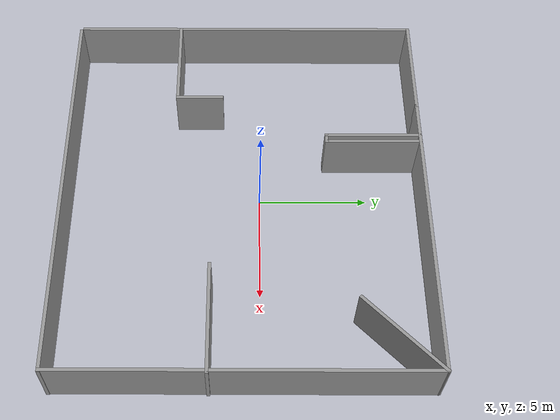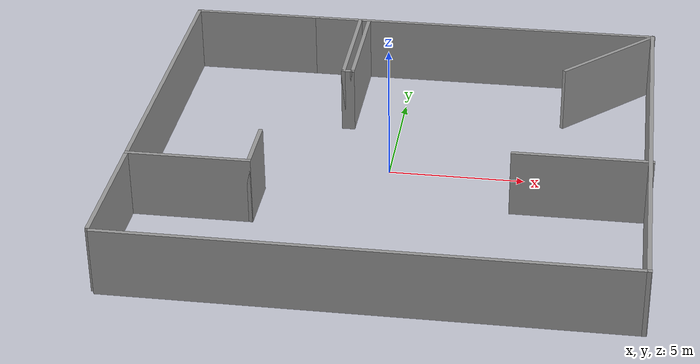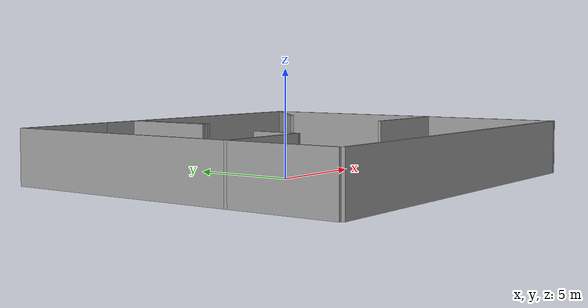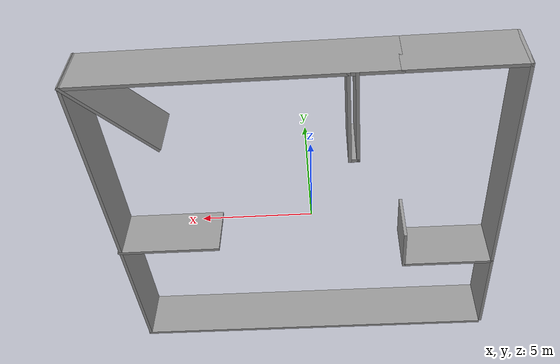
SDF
<?xml version='1.0'?>
<sdf version='1.7'>
  <model name='maze_1'>
    <pose>0.38742 -0.706662 0 0 -0 0</pose>
    <link name='Wall_10'>
      <collision name='Wall_10_Collision'>
        <geometry>
          <box>
            <size>2.25 0.15 2.5</size>
          </box>
        </geometry>
        <pose>0 0 1.25 0 -0 0</pose>
      </collision>
      <visual name='Wall_10_Visual'>
        <pose>0 0 1.25 0 -0 0</pose>
        <geometry>
          <box>
            <size>2.25 0.15 2.5</size>
          </box>
        </geometry>
        <material>
          <script>
            <uri>file://media/materials/scripts/gazebo.material</uri>
            <name>Gazebo/Grey</name>
          </script>
          <ambient>1 1 1 1</ambient>
        </material>
        <meta>
          <layer>0</layer>
        </meta>
      </visual>
      <pose>-4.78472 -2.14046 0 0 -0 1.5708</pose>
    </link>
    <link name='Wall_12'>
      <collision name='Wall_12_Collision'>
        <geometry>
          <box>
            <size>13.5 0.15 2.5</size>
          </box>
        </geometry>
        <pose>0 0 1.25 0 -0 0</pose>
      </collision>
      <visual name='Wall_12_Visual'>
        <pose>0 0 1.25 0 -0 0</pose>
        <geometry>
          <box>
            <size>13.5 0.15 2.5</size>
          </box>
        </geometry>
        <material>
          <script>
            <uri>file://media/materials/scripts/gazebo.material</uri>
            <name>Gazebo/Grey</name>
          </script>
          <ambient>1 1 1 1</ambient>
        </material>
        <meta>
          <layer>0</layer>
        </meta>
      </visual>
      <pose>2.39028 8.15954 0 0 -0 0</pose>
    </link>
    <link name='Wall_13'>
      <collision name='Wall_13_Collision'>
        <geometry>
          <box>
            <size>16.5003 0.15 2.5</size>
          </box>
        </geometry>
        <pose>0 0 1.25 0 -0 0</pose>
      </collision>
      <visual name='Wall_13_Visual'>
        <pose>0 0 1.25 0 -0 0</pose>
        <geometry>
          <box>
            <size>16.5003 0.15 2.5</size>
          </box>
        </geometry>
        <material>
          <script>
            <uri>file://media/materials/scripts/gazebo.material</uri>
            <name>Gazebo/Grey</name>
          </script>
          <ambient>1 1 1 1</ambient>
        </material>
        <meta>
          <layer>0</layer>
        </meta>
      </visual>
      <pose>9.06528 -0.015456 0 0 -0 -1.5708</pose>
    </link>
    <link name='Wall_14'>
      <collision name='Wall_14_Collision'>
        <geometry>
          <box>
            <size>18.25 0.15 2.5</size>
          </box>
        </geometry>
        <pose>0 0 1.25 0 -0 0</pose>
      </collision>
      <visual name='Wall_14_Visual'>
        <pose>0 0 1.25 0 -0 0</pose>
        <geometry>
          <box>
            <size>18.25 0.15 2.5</size>
          </box>
        </geometry>
        <material>
          <script>
            <uri>file://media/materials/scripts/gazebo.material</uri>
            <name>Gazebo/Grey</name>
          </script>
          <ambient>1 1 1 1</ambient>
        </material>
        <meta>
          <layer>0</layer>
        </meta>
      </visual>
      <pose>0.035391 -8.19046 0 0 -0 3.14159</pose>
    </link>
    <link name='Wall_17'>
      <collision name='Wall_17_Collision'>
        <geometry>
          <box>
            <size>4.75 0.15 2.5</size>
          </box>
        </geometry>
        <pose>0 0 1.25 0 -0 0</pose>
      </collision>
      <visual name='Wall_17_Visual'>
        <pose>0 0 1.25 0 -0 0</pose>
        <geometry>
          <box>
            <size>4.75 0.15 2.5</size>
          </box>
        </geometry>
        <material>
          <script>
            <uri>file://media/materials/scripts/gazebo.material</uri>
            <name>Gazebo/Grey</name>
          </script>
          <ambient>1 1 1 1</ambient>
        </material>
        <meta>
          <layer>0</layer>
        </meta>
      </visual>
      <pose>7.43893 6.5332 0 0 -0 -2.35619</pose>
    </link>
    <link name='Wall_19'>
      <collision name='Wall_19_Collision'>
        <geometry>
          <box>
            <size>5 0.15 2.5</size>
          </box>
        </geometry>
        <pose>0 0 1.25 0 -0 0</pose>
      </collision>
      <visual name='Wall_19_Visual'>
        <pose>0 0 1.25 0 -0 0</pose>
        <geometry>
          <box>
            <size>5 0.15 2.5</size>
          </box>
        </geometry>
        <material>
          <script>
            <uri>file://media/materials/scripts/gazebo.material</uri>
            <name>Gazebo/Grey</name>
          </script>
          <ambient>1 1 1 1</ambient>
        </material>
        <meta>
          <layer>0</layer>
        </meta>
      </visual>
      <pose>6.70972 -1.47457 0 0 -0 0</pose>
    </link>
    <link name='Wall_21'>
      <collision name='Wall_21_Collision'>
        <geometry>
          <box>
            <size>4.5 0.15 2.5</size>
          </box>
        </geometry>
        <pose>0 0 1.25 0 -0 0</pose>
      </collision>
      <visual name='Wall_21_Visual'>
        <pose>0 0 1.25 0 -0 0</pose>
        <geometry>
          <box>
            <size>4.5 0.15 2.5</size>
          </box>
        </geometry>
        <material>
          <script>
            <uri>file://media/materials/scripts/gazebo.material</uri>
            <name>Gazebo/Grey</name>
          </script>
          <ambient>1 1 1 1</ambient>
        </material>
        <meta>
          <layer>0</layer>
        </meta>
      </visual>
      <pose>-2.55429 5.98088 0 0 -0 -1.5708</pose>
    </link>
    <link name='Wall_24'>
      <collision name='Wall_24_Collision'>
        <geometry>
          <box>
            <size>0.5 0.15 2.5</size>
          </box>
        </geometry>
        <pose>0 0 1.25 0 -0 0</pose>
      </collision>
      <visual name='Wall_24_Visual'>
        <pose>0 0 1.25 0 -0 0</pose>
        <geometry>
          <box>
            <size>0.5 0.15 2.5</size>
          </box>
        </geometry>
        <material>
          <script>
            <uri>file://media/materials/scripts/gazebo.material</uri>
            <name>Gazebo/Grey</name>
          </script>
          <ambient>1 1 1 1</ambient>
        </material>
        <meta>
          <layer>0</layer>
        </meta>
      </visual>
      <pose>-2.37929 3.80588 0 0 -0 0</pose>
    </link>
    <link name='Wall_25'>
      <collision name='Wall_25_Collision'>
        <geometry>
          <box>
            <size>4.5 0.15 2.5</size>
          </box>
        </geometry>
        <pose>0 0 1.25 0 -0 0</pose>
      </collision>
      <visual name='Wall_25_Visual'>
        <pose>0 0 1.25 0 -0 0</pose>
        <geometry>
          <box>
            <size>4.5 0.15 2.5</size>
          </box>
        </geometry>
        <material>
          <script>
            <uri>file://media/materials/scripts/gazebo.material</uri>
            <name>Gazebo/Grey</name>
          </script>
          <ambient>1 1 1 1</ambient>
        </material>
        <meta>
          <layer>0</layer>
        </meta>
      </visual>
      <pose>-2.20429 5.98088 0 0 -0 1.5708</pose>
    </link>
    <link name='Wall_27'>
      <collision name='Wall_27_Collision'>
        <geometry>
          <box>
            <size>5 0.15 2.5</size>
          </box>
        </geometry>
        <pose>0 0 1.25 0 -0 0</pose>
      </collision>
      <visual name='Wall_27_Visual'>
        <pose>0 0 1.25 0 -0 0</pose>
        <geometry>
          <box>
            <size>5 0.15 2.5</size>
          </box>
        </geometry>
        <material>
          <script>
            <uri>file://media/materials/scripts/gazebo.material</uri>
            <name>Gazebo/Grey</name>
          </script>
          <ambient>1 1 1 1</ambient>
        </material>
        <meta>
          <layer>0</layer>
        </meta>
      </visual>
      <pose>-9.13472 -5.61546 0 0 -0 -1.5708</pose>
    </link>
    <link name='Wall_5'>
      <collision name='Wall_5_Collision'>
        <geometry>
          <box>
            <size>11.5 0.15 2.5</size>
          </box>
        </geometry>
        <pose>0 0 1.25 0 -0 0</pose>
      </collision>
      <visual name='Wall_5_Visual'>
        <pose>0 0 1.25 0 -0 0</pose>
        <geometry>
          <box>
            <size>11.5 0.15 2.5</size>
          </box>
        </geometry>
        <material>
          <script>
            <uri>file://media/materials/scripts/gazebo.material</uri>
            <name>Gazebo/Grey</name>
          </script>
          <ambient>1 1 1 1</ambient>
        </material>
        <meta>
          <layer>0</layer>
        </meta>
      </visual>
      <pose>-9.13472 2.48454 0 0 -0 1.5708</pose>
    </link>
    <link name='Wall_7'>
      <collision name='Wall_7_Collision'>
        <geometry>
          <box>
            <size>5 0.15 2.5</size>
          </box>
        </geometry>
        <pose>0 0 1.25 0 -0 0</pose>
      </collision>
      <visual name='Wall_7_Visual'>
        <pose>0 0 1.25 0 -0 0</pose>
        <geometry>
          <box>
            <size>5 0.15 2.5</size>
          </box>
        </geometry>
        <material>
          <script>
            <uri>file://media/materials/scripts/gazebo.material</uri>
            <name>Gazebo/Grey</name>
          </script>
          <ambient>1 1 1 1</ambient>
        </material>
        <meta>
          <layer>0</layer>
        </meta>
      </visual>
      <pose>-6.70972 8.15954 0 0 -0 0</pose>
    </link>
    <link name='Wall_9'>
      <collision name='Wall_9_Collision'>
        <geometry>
          <box>
            <size>4.5 0.15 2.5</size>
          </box>
        </geometry>
        <pose>0 0 1.25 0 -0 0</pose>
      </collision>
      <visual name='Wall_9_Visual'>
        <pose>0 0 1.25 0 -0 0</pose>
        <geometry>
          <box>
            <size>4.5 0.15 2.5</size>
          </box>
        </geometry>
        <material>
          <script>
            <uri>file://media/materials/scripts/gazebo.material</uri>
            <name>Gazebo/Grey</name>
          </script>
          <ambient>1 1 1 1</ambient>
        </material>
        <meta>
          <layer>0</layer>
        </meta>
      </visual>
      <pose>-6.95972 -3.19046 0 0 -0 0</pose>
    </link>
    <static>1</static>
  </model>
</sdf>
